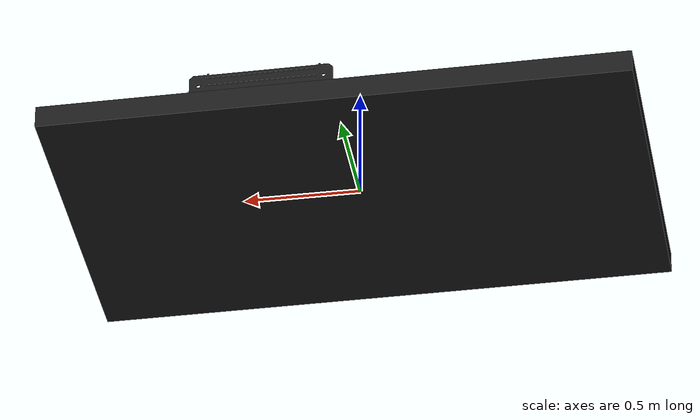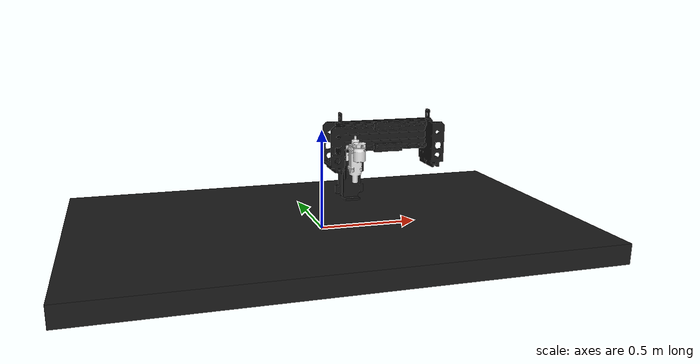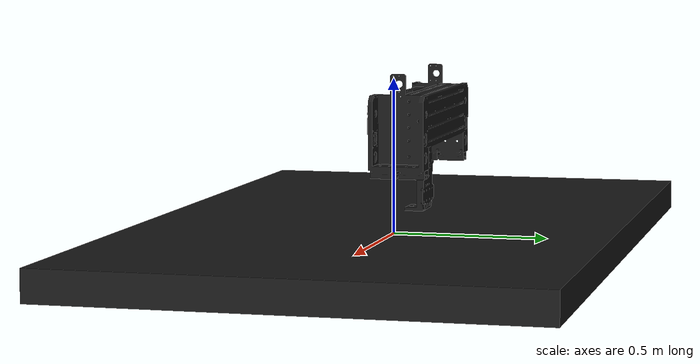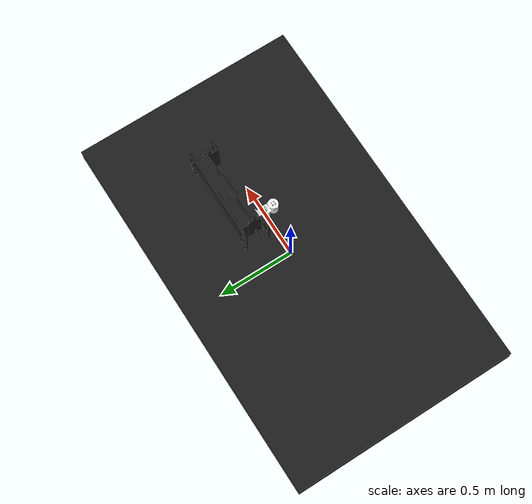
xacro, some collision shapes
<?xml version="1.0"?>
<robot xmlns:xacro="https://www.ros.org/wiki/xacro" name="cnc_bot">

	<link name="world"></link>

	<joint name="base_joint" type="fixed">
		<origin xyz="0 0 0" rpy="0 0 0"/>
		<parent link="world"/>
		<child link="base_link"/>
	</joint>

	<link name="base_link">
		<visual>
			<origin xyz="0 0 0" rpy="0 0 0"/>
			<geometry>
                <mesh filename="package://urdf_example/meshes/11000005_Base_Assy.STL" scale="0.001 0.001 0.001" />
			</geometry>
			<material name="gray">
				<color rgba="0.1 0.1 0.1 1"/>
			</material>
		</visual>
		<collision>
			<origin xyz="0 0 0" rpy="0 0 0"/>
			<geometry>
				<box size="2.5 1.5 0.1" />
			</geometry>
		</collision>
		<inertial>
			<origin xyz="0 0 0.05" rpy="0 0 0"/>
			<mass value="12" />
			<inertia ixx="2.26" ixy="0.0" ixz="0.0" iyy="6.26" iyz="0.0" izz="8.5" />
		</inertial>
	 </link>

	<joint name="gantry_joint" type="prismatic">
		<origin xyz=".19475 .09149 .2109" rpy="0 0 0"/>
		<parent link="base_link"/>
		<child link="gantry_link"/>
		<axis xyz="0 1 0"/>
		<limit lower="0" upper="0.8" velocity="1" effort="1"/>
    </joint>

   <link name="gantry_link">
        <visual>
            <origin xyz=".19475 .09149 .2109" rpy="0 0 0"/>
            <geometry>
                <mesh filename="package://urdf_example/meshes/11000001_Gantry_Assembly.STL" scale="0.001 0.001 0.001" />
            </geometry>
            <material name="gray">
				<color rgba="0.1 0.1 0.1 1"/>
			</material>
        </visual>
        <collision>
            <origin xyz="0 0 0.075" rpy="0 0 0"/>
            <geometry>
                <box size="0.5 0.25 0.15" />
            </geometry>
        </collision>
		<inertial>
			<origin xyz="0 0 0.05" rpy="0 0 0"/>
			<mass value="12" />
			<inertia ixx="2.26" ixy="0.0" ixz="0.0" iyy="6.26" iyz="0.0" izz="8.5" />
		</inertial>
    </link>

    <joint name="cross_joint" type="prismatic">
        <origin xyz="0 0.03 0" rpy="0 0 0"/>
        <parent link="gantry_link"/>
        <child link="cross_link"/>
        <axis xyz="1 0 0"/>
        <limit lower="0" upper="0.4" velocity="1" effort="100"/>
    </joint>

   <link name="cross_link">
        <visual>
            <origin xyz="0 .030 0" rpy="0 0 0"/>
            <geometry>
                <mesh filename="package://urdf_example/meshes/X_Carriage_Assy.STL" scale="0.001 0.001 0.001" />
            </geometry>
            <material name="gray">
				<color rgba="0.1 0.1 0.1 1"/>
			</material>
        </visual>
        <collision>
            <origin xyz="0 0 0.075" rpy="0 0 0"/>
            <geometry>
                <box size="0.5 0.25 0.15" />
            </geometry>
        </collision>
		<inertial>
			<origin xyz="0 0 0.05" rpy="0 0 0"/>
			<mass value="12" />
			<inertia ixx="2.26" ixy="0.0" ixz="0.0" iyy="6.26" iyz="0.0" izz="8.5" />
		</inertial>
    </link>

    <joint name="z_joint" type="prismatic">
        <origin xyz="0 -0.030 0" rpy="0 0 0"/>
        <parent link="cross_link"/>
        <child link="z_link"/>
        <axis xyz="0 0 1"/>
        <limit lower="0" upper="0.1" velocity="1" effort="100"/>
    </joint>

   <link name="z_link">
        <visual>
            <origin xyz="0 -0.030 0" rpy="0 0 0"/>
            <geometry>
                <mesh filename="package://urdf_example/meshes/Spindle_Assembly.STL" scale="0.001 0.001 0.001" />
            </geometry>
            <material name="white">
				<color rgba="0.9 0.9 0.9 1"/>
			</material>
        </visual>
        <collision>
            <origin xyz="0 0 0.075" rpy="0 0 0"/>
            <geometry>
                <box size="0.5 0.25 0.15" />
            </geometry>
        </collision>
		<inertial>
			<origin xyz="0 0 0.05" rpy="0 0 0"/>
			<mass value="12" />
			<inertia ixx="2.26" ixy="0.0" ixz="0.0" iyy="6.26" iyz="0.0" izz="8.5" />
		</inertial>
    </link>

</robot>
